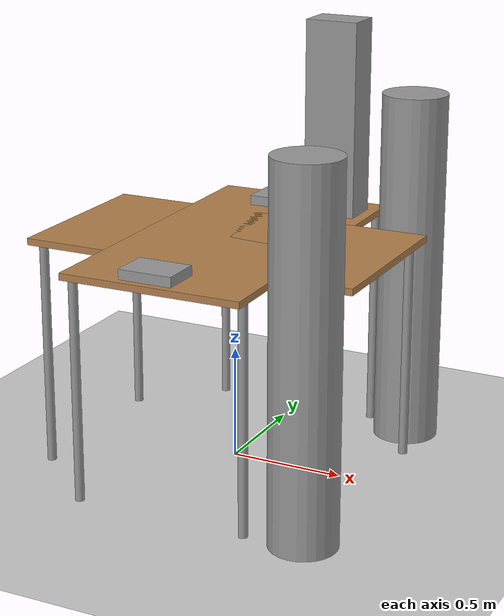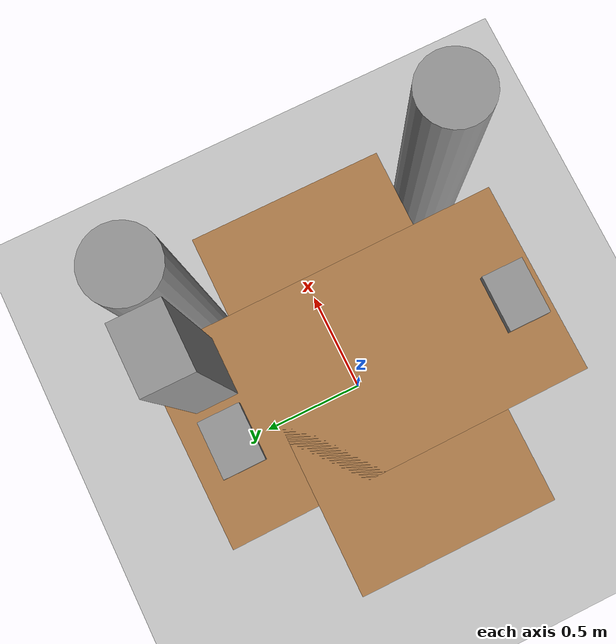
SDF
<sdf version="1.7">
 <world name="default">
  <light name="sun" type="directional">
   <pose>0 0 10 0 -0 0</pose>
   <diffuse>0.8 0.8 0.8 1</diffuse>
   <specular>0.2 0.2 0.2 1</specular>
   <attenuation>
    <range>1000</range>
    <constant>0.9</constant>
    <linear>0.01</linear>
    <quadratic>0.001</quadratic>
   </attenuation>
   <direction>-0.5 0.1 -0.9</direction>
   <spot><inner_angle>0</inner_angle><outer_angle>0</outer_angle><falloff>0</falloff></spot>
  </light>
  <model name="ground_plane">
   <static>1</static>
   <link name="link">
    <collision name="collision">
     <geometry><plane><normal>0 0 1</normal><size>100 100</size></plane></geometry>
     <surface>
      <contact><collide_bitmask>65535</collide_bitmask></contact>
      <friction><ode><mu>100</mu><mu2>50</mu2></ode></friction>
     </surface>
    </collision>
    <visual name="visual">
     <cast_shadows>0</cast_shadows>
     <geometry><plane><normal>0 0 1</normal><size>100 100</size></plane></geometry>
     <material>
      <script><uri>file://media/materials/scripts/gazebo.material</uri><name>Gazebo/Grey</name></script>
     </material>
    </visual>
   </link>
  </model>
  <gravity>0 0 -9.8</gravity>
  <magnetic_field>6e-06 2.3e-05 -4.2e-05</magnetic_field>
  <atmosphere type="adiabatic"/>
  <physics type="ode">
   <max_step_size>0.001</max_step_size>
   <real_time_factor>1</real_time_factor>
   <real_time_update_rate>1000</real_time_update_rate>
  </physics>
  <scene><ambient>0.4 0.4 0.4 1</ambient><background>0.7 0.7 0.7 1</background><shadows>1</shadows></scene>
  <spherical_coordinates>
   <surface_model>EARTH_WGS84</surface_model>
   <latitude_deg>0</latitude_deg>
   <longitude_deg>0</longitude_deg>
   <elevation>0</elevation>
   <heading_deg>0</heading_deg>
  </spherical_coordinates>
  <model name="table">
   <static>1</static>
   <link name="link">
    <collision name="surface">
     <pose>0 0 1 0 -0 0</pose>
     <geometry><box><size>1.5 0.8 0.03</size></box></geometry>
     <surface><friction><ode><mu>0.6</mu><mu2>0.6</mu2></ode></friction></surface>
    </collision>
    <visual name="visual1">
     <pose>0 0 1 0 -0 0</pose>
     <geometry><box><size>1.5 0.8 0.03</size></box></geometry>
     <material>
      <script><uri>file://media/materials/scripts/gazebo.material</uri><name>Gazebo/Wood</name></script>
     </material>
    </visual>
    <collision name="front_left_leg">
     <pose>0.68 0.38 0.5 0 -0 0</pose>
     <geometry><cylinder><radius>0.02</radius><length>1</length></cylinder></geometry>
    </collision>
    <visual name="front_left_leg">
     <pose>0.68 0.38 0.5 0 -0 0</pose>
     <geometry><cylinder><radius>0.02</radius><length>1</length></cylinder></geometry>
     <material>
      <script><uri>file://media/materials/scripts/gazebo.material</uri><name>Gazebo/Grey</name></script>
     </material>
    </visual>
    <collision name="front_right_leg">
     <pose>0.68 -0.38 0.5 0 -0 0</pose>
     <geometry><cylinder><radius>0.02</radius><length>1</length></cylinder></geometry>
    </collision>
    <visual name="front_right_leg">
     <pose>0.68 -0.38 0.5 0 -0 0</pose>
     <geometry><cylinder><radius>0.02</radius><length>1</length></cylinder></geometry>
     <material>
      <script><uri>file://media/materials/scripts/gazebo.material</uri><name>Gazebo/Grey</name></script>
     </material>
    </visual>
    <collision name="back_right_leg">
     <pose>-0.68 -0.38 0.5 0 -0 0</pose>
     <geometry><cylinder><radius>0.02</radius><length>1</length></cylinder></geometry>
    </collision>
    <visual name="back_right_leg">
     <pose>-0.68 -0.38 0.5 0 -0 0</pose>
     <geometry><cylinder><radius>0.02</radius><length>1</length></cylinder></geometry>
     <material>
      <script><uri>file://media/materials/scripts/gazebo.material</uri><name>Gazebo/Grey</name></script>
     </material>
    </visual>
    <collision name="back_left_leg">
     <pose>-0.68 0.38 0.5 0 -0 0</pose>
     <geometry><cylinder><radius>0.02</radius><length>1</length></cylinder></geometry>
    </collision>
    <visual name="back_left_leg">
     <pose>-0.68 0.38 0.5 0 -0 0</pose>
     <geometry><cylinder><radius>0.02</radius><length>1</length></cylinder></geometry>
     <material>
      <script><uri>file://media/materials/scripts/gazebo.material</uri><name>Gazebo/Grey</name></script>
     </material>
    </visual>
   </link>
   <pose>0 -0.016339 0 0 -0 1.58231</pose>
  </model>
  <model name="table_0">
   <static>1</static>
   <link name="link">
    <collision name="surface">
     <pose>0 0 1 0 -0 0</pose>
     <geometry><box><size>1.5 0.8 0.03</size></box></geometry>
     <surface><friction><ode><mu>0.6</mu><mu2>0.6</mu2></ode></friction></surface>
    </collision>
    <visual name="visual1">
     <pose>0 0 1 0 -0 0</pose>
     <geometry><box><size>1.5 0.8 0.03</size></box></geometry>
     <material>
      <script><uri>file://media/materials/scripts/gazebo.material</uri><name>Gazebo/Wood</name></script>
     </material>
    </visual>
    <collision name="front_left_leg">
     <pose>0.68 0.38 0.5 0 -0 0</pose>
     <geometry><cylinder><radius>0.02</radius><length>1</length></cylinder></geometry>
    </collision>
    <visual name="front_left_leg">
     <pose>0.68 0.38 0.5 0 -0 0</pose>
     <geometry><cylinder><radius>0.02</radius><length>1</length></cylinder></geometry>
     <material>
      <script><uri>file://media/materials/scripts/gazebo.material</uri><name>Gazebo/Grey</name></script>
     </material>
    </visual>
    <collision name="front_right_leg">
     <pose>0.68 -0.38 0.5 0 -0 0</pose>
     <geometry><cylinder><radius>0.02</radius><length>1</length></cylinder></geometry>
    </collision>
    <visual name="front_right_leg">
     <pose>0.68 -0.38 0.5 0 -0 0</pose>
     <geometry><cylinder><radius>0.02</radius><length>1</length></cylinder></geometry>
     <material>
      <script><uri>file://media/materials/scripts/gazebo.material</uri><name>Gazebo/Grey</name></script>
     </material>
    </visual>
    <collision name="back_right_leg">
     <pose>-0.68 -0.38 0.5 0 -0 0</pose>
     <geometry><cylinder><radius>0.02</radius><length>1</length></cylinder></geometry>
    </collision>
    <visual name="back_right_leg">
     <pose>-0.68 -0.38 0.5 0 -0 0</pose>
     <geometry><cylinder><radius>0.02</radius><length>1</length></cylinder></geometry>
     <material>
      <script><uri>file://media/materials/scripts/gazebo.material</uri><name>Gazebo/Grey</name></script>
     </material>
    </visual>
    <collision name="back_left_leg">
     <pose>-0.68 0.38 0.5 0 -0 0</pose>
     <geometry><cylinder><radius>0.02</radius><length>1</length></cylinder></geometry>
    </collision>
    <visual name="back_left_leg">
     <pose>-0.68 0.38 0.5 0 -0 0</pose>
     <geometry><cylinder><radius>0.02</radius><length>1</length></cylinder></geometry>
     <material>
      <script><uri>file://media/materials/scripts/gazebo.material</uri><name>Gazebo/Grey</name></script>
     </material>
    </visual>
   </link>
   <pose>-0.021785 -0.027231 0 0 -0 0</pose>
  </model>
  <model name="unit_cylinder">
   <pose>0.579459 0.578284 0.790226 0 -0 -4e-06</pose>
   <link name="link">
    <inertial>
     <mass>1</mass>
     <inertia><ixx>0.145833</ixx><ixy>0</ixy><ixz>0</ixz><iyy>0.145833</iyy><iyz>0</iyz><izz>0.125</izz></inertia>
    </inertial>
    <collision name="collision">
     <geometry><cylinder><radius>0.144701</radius><length>1.58046</length></cylinder></geometry>
    </collision>
    <visual name="visual">
     <geometry><cylinder><radius>0.144701</radius><length>1.58046</length></cylinder></geometry>
     <material>
      <script><name>Gazebo/Grey</name><uri>file://media/materials/scripts/gazebo.material</uri></script>
     </material>
    </visual>
   </link>
  </model>
  <model name="unit_cylinder_clone">
   <pose>0.631769 -0.648107 0.791482 0 0 -1.1e-05</pose>
   <link name="link">
    <inertial>
     <mass>1</mass>
     <inertia><ixx>0.145833</ixx><ixy>0</ixy><ixz>0</ixz><iyy>0.145833</iyy><iyz>0</iyz><izz>0.125</izz></inertia>
    </inertial>
    <collision name="collision">
     <geometry><cylinder><radius>0.144701</radius><length>1.58297</length></cylinder></geometry>
    </collision>
    <visual name="visual">
     <geometry><cylinder><radius>0.144701</radius><length>1.58297</length></cylinder></geometry>
     <material>
      <script><name>Gazebo/Grey</name><uri>file://media/materials/scripts/gazebo.material</uri></script>
     </material>
    </visual>
   </link>
  </model>
  <model name="unit_box">
   <pose>-0.044821 0.560271 1.03675 0 -0 5.3e-05</pose>
   <link name="link">
    <inertial>
     <mass>1</mass>
     <inertia>
      <ixx>0.166667</ixx>
      <ixy>0</ixy>
      <ixz>0</ixz>
      <iyy>0.166667</iyy>
      <iyz>0</iyz>
      <izz>0.166667</izz>
     </inertia>
    </inertial>
    <collision name="collision"><geometry><box><size>0.235499 0.17266 0.043509</size></box></geometry></collision>
    <visual name="visual">
     <geometry><box><size>0.235499 0.17266 0.043509</size></box></geometry>
     <material>
      <script><name>Gazebo/Grey</name><uri>file://media/materials/scripts/gazebo.material</uri></script>
     </material>
    </visual>
   </link>
  </model>
  <model name="unit_box_clone">
   <pose>-0.020581 -0.648306 1.03675 0 4e-06 6.3e-05</pose>
   <link name="link">
    <inertial>
     <mass>1</mass>
     <inertia>
      <ixx>0.166667</ixx>
      <ixy>0</ixy>
      <ixz>0</ixz>
      <iyy>0.166667</iyy>
      <iyz>0</iyz>
      <izz>0.166667</izz>
     </inertia>
    </inertial>
    <collision name="collision"><geometry><box><size>0.235499 0.17266 0.043509</size></box></geometry></collision>
    <visual name="visual">
     <geometry><box><size>0.235499 0.17266 0.043509</size></box></geometry>
     <material>
      <script><name>Gazebo/Grey</name><uri>file://media/materials/scripts/gazebo.material</uri></script>
     </material>
    </visual>
   </link>
  </model>
  <model name="unit_box_clone_0">
   <pose>0.226395 0.552254 1.44812 1.6e-05 2e-06 0.000101</pose>
   <link name="link">
    <inertial>
     <mass>1</mass>
     <inertia>
      <ixx>0.166667</ixx>
      <ixy>0</ixy>
      <ixz>0</ixz>
      <iyy>0.166667</iyy>
      <iyz>0</iyz>
      <izz>0.166667</izz>
     </inertia>
    </inertial>
    <collision name="collision"><geometry><box><size>0.235499 0.17266 0.866234</size></box></geometry></collision>
    <visual name="visual">
     <geometry><box><size>0.235499 0.17266 0.866234</size></box></geometry>
     <material>
      <script><name>Gazebo/Grey</name><uri>file://media/materials/scripts/gazebo.material</uri></script>
     </material>
    </visual>
   </link>
  </model>
 </world>
</sdf>
